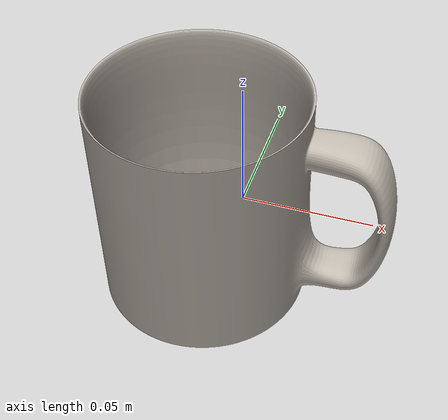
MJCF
<mujoco model="mug_70">
  <asset>
    <mesh file="visual/model_normalized_0.obj" name="model_normalized_0_vis" scale="0.11499999999999999 0.11499999999999999 0.11499999999999999" refquat="0.7071067811865472 0.0 0.0 0.7071067811865476"/>
    <mesh file="collision/model_normalized_collision_22.obj" name="model_normalized_collision_22._coll" scale="0.11499999999999999 0.11499999999999999 0.11499999999999999" refquat="0.7071067811865472 0.0 0.0 0.7071067811865476"/>
    <mesh file="collision/model_normalized_collision_23.obj" name="model_normalized_collision_23._coll" scale="0.11499999999999999 0.11499999999999999 0.11499999999999999" refquat="0.7071067811865472 0.0 0.0 0.7071067811865476"/>
    <mesh file="collision/model_normalized_collision_21.obj" name="model_normalized_collision_21._coll" scale="0.11499999999999999 0.11499999999999999 0.11499999999999999" refquat="0.7071067811865472 0.0 0.0 0.7071067811865476"/>
    <mesh file="collision/model_normalized_collision_20.obj" name="model_normalized_collision_20._coll" scale="0.11499999999999999 0.11499999999999999 0.11499999999999999" refquat="0.7071067811865472 0.0 0.0 0.7071067811865476"/>
    <mesh file="collision/model_normalized_collision_24.obj" name="model_normalized_collision_24._coll" scale="0.11499999999999999 0.11499999999999999 0.11499999999999999" refquat="0.7071067811865472 0.0 0.0 0.7071067811865476"/>
    <mesh file="collision/model_normalized_collision_30.obj" name="model_normalized_collision_30._coll" scale="0.11499999999999999 0.11499999999999999 0.11499999999999999" refquat="0.7071067811865472 0.0 0.0 0.7071067811865476"/>
    <mesh file="collision/model_normalized_collision_18.obj" name="model_normalized_collision_18._coll" scale="0.11499999999999999 0.11499999999999999 0.11499999999999999" refquat="0.7071067811865472 0.0 0.0 0.7071067811865476"/>
    <mesh file="collision/model_normalized_collision_19.obj" name="model_normalized_collision_19._coll" scale="0.11499999999999999 0.11499999999999999 0.11499999999999999" refquat="0.7071067811865472 0.0 0.0 0.7071067811865476"/>
    <mesh file="collision/model_normalized_collision_31.obj" name="model_normalized_collision_31._coll" scale="0.11499999999999999 0.11499999999999999 0.11499999999999999" refquat="0.7071067811865472 0.0 0.0 0.7071067811865476"/>
    <mesh file="collision/model_normalized_collision_25.obj" name="model_normalized_collision_25._coll" scale="0.11499999999999999 0.11499999999999999 0.11499999999999999" refquat="0.7071067811865472 0.0 0.0 0.7071067811865476"/>
    <mesh file="collision/model_normalized_collision_27.obj" name="model_normalized_collision_27._coll" scale="0.11499999999999999 0.11499999999999999 0.11499999999999999" refquat="0.7071067811865472 0.0 0.0 0.7071067811865476"/>
    <mesh file="collision/model_normalized_collision_26.obj" name="model_normalized_collision_26._coll" scale="0.11499999999999999 0.11499999999999999 0.11499999999999999" refquat="0.7071067811865472 0.0 0.0 0.7071067811865476"/>
    <mesh file="collision/model_normalized_collision_9.obj" name="model_normalized_collision_9._coll" scale="0.11499999999999999 0.11499999999999999 0.11499999999999999" refquat="0.7071067811865472 0.0 0.0 0.7071067811865476"/>
    <mesh file="collision/model_normalized_collision_8.obj" name="model_normalized_collision_8._coll" scale="0.11499999999999999 0.11499999999999999 0.11499999999999999" refquat="0.7071067811865472 0.0 0.0 0.7071067811865476"/>
    <mesh file="collision/model_normalized_collision_6.obj" name="model_normalized_collision_6._coll" scale="0.11499999999999999 0.11499999999999999 0.11499999999999999" refquat="0.7071067811865472 0.0 0.0 0.7071067811865476"/>
    <mesh file="collision/model_normalized_collision_7.obj" name="model_normalized_collision_7._coll" scale="0.11499999999999999 0.11499999999999999 0.11499999999999999" refquat="0.7071067811865472 0.0 0.0 0.7071067811865476"/>
    <mesh file="collision/model_normalized_collision_5.obj" name="model_normalized_collision_5._coll" scale="0.11499999999999999 0.11499999999999999 0.11499999999999999" refquat="0.7071067811865472 0.0 0.0 0.7071067811865476"/>
    <mesh file="collision/model_normalized_collision_4.obj" name="model_normalized_collision_4._coll" scale="0.11499999999999999 0.11499999999999999 0.11499999999999999" refquat="0.7071067811865472 0.0 0.0 0.7071067811865476"/>
    <mesh file="collision/model_normalized_collision_0.obj" name="model_normalized_collision_0._coll" scale="0.11499999999999999 0.11499999999999999 0.11499999999999999" refquat="0.7071067811865472 0.0 0.0 0.7071067811865476"/>
    <mesh file="collision/model_normalized_collision_1.obj" name="model_normalized_collision_1._coll" scale="0.11499999999999999 0.11499999999999999 0.11499999999999999" refquat="0.7071067811865472 0.0 0.0 0.7071067811865476"/>
    <mesh file="collision/model_normalized_collision_3.obj" name="model_normalized_collision_3._coll" scale="0.11499999999999999 0.11499999999999999 0.11499999999999999" refquat="0.7071067811865472 0.0 0.0 0.7071067811865476"/>
    <mesh file="collision/model_normalized_collision_2.obj" name="model_normalized_collision_2._coll" scale="0.11499999999999999 0.11499999999999999 0.11499999999999999" refquat="0.7071067811865472 0.0 0.0 0.7071067811865476"/>
    <mesh file="collision/model_normalized_collision_17.obj" name="model_normalized_collision_17._coll" scale="0.11499999999999999 0.11499999999999999 0.11499999999999999" refquat="0.7071067811865472 0.0 0.0 0.7071067811865476"/>
    <mesh file="collision/model_normalized_collision_16.obj" name="model_normalized_collision_16._coll" scale="0.11499999999999999 0.11499999999999999 0.11499999999999999" refquat="0.7071067811865472 0.0 0.0 0.7071067811865476"/>
    <mesh file="collision/model_normalized_collision_28.obj" name="model_normalized_collision_28._coll" scale="0.11499999999999999 0.11499999999999999 0.11499999999999999" refquat="0.7071067811865472 0.0 0.0 0.7071067811865476"/>
    <mesh file="collision/model_normalized_collision_14.obj" name="model_normalized_collision_14._coll" scale="0.11499999999999999 0.11499999999999999 0.11499999999999999" refquat="0.7071067811865472 0.0 0.0 0.7071067811865476"/>
    <mesh file="collision/model_normalized_collision_15.obj" name="model_normalized_collision_15._coll" scale="0.11499999999999999 0.11499999999999999 0.11499999999999999" refquat="0.7071067811865472 0.0 0.0 0.7071067811865476"/>
    <mesh file="collision/model_normalized_collision_29.obj" name="model_normalized_collision_29._coll" scale="0.11499999999999999 0.11499999999999999 0.11499999999999999" refquat="0.7071067811865472 0.0 0.0 0.7071067811865476"/>
    <mesh file="collision/model_normalized_collision_11.obj" name="model_normalized_collision_11._coll" scale="0.11499999999999999 0.11499999999999999 0.11499999999999999" refquat="0.7071067811865472 0.0 0.0 0.7071067811865476"/>
    <mesh file="collision/model_normalized_collision_10.obj" name="model_normalized_collision_10._coll" scale="0.11499999999999999 0.11499999999999999 0.11499999999999999" refquat="0.7071067811865472 0.0 0.0 0.7071067811865476"/>
    <mesh file="collision/model_normalized_collision_12.obj" name="model_normalized_collision_12._coll" scale="0.11499999999999999 0.11499999999999999 0.11499999999999999" refquat="0.7071067811865472 0.0 0.0 0.7071067811865476"/>
    <mesh file="collision/model_normalized_collision_13.obj" name="model_normalized_collision_13._coll" scale="0.11499999999999999 0.11499999999999999 0.11499999999999999" refquat="0.7071067811865472 0.0 0.0 0.7071067811865476"/>
    <texture type="2d" name="image0" file="visual/image0.png"/>
    <material name="m_mug" texture="image0" specular="0.5" shininess="0.359999993"/>
  </asset>
  <worldbody>
    <body>
      <body name="object">
        <geom solimp="0.998 0.998 0.001" solref="0.001 1" density="100" friction="0.95 0.3 0.1" type="mesh" mesh="model_normalized_0_vis" conaffinity="0" contype="0" group="1" material="m_mug"/>
        <geom solimp="0.998 0.998 0.001" solref="0.001 1" density="100" friction="0.95 0.3 0.1" type="mesh" mesh="model_normalized_collision_22._coll" group="0" rgba="0.8 0.8 0.8 0.0"/>
        <geom solimp="0.998 0.998 0.001" solref="0.001 1" density="100" friction="0.95 0.3 0.1" type="mesh" mesh="model_normalized_collision_23._coll" group="0" rgba="0.8 0.8 0.8 0.0"/>
        <geom solimp="0.998 0.998 0.001" solref="0.001 1" density="100" friction="0.95 0.3 0.1" type="mesh" mesh="model_normalized_collision_21._coll" group="0" rgba="0.8 0.8 0.8 0.0"/>
        <geom solimp="0.998 0.998 0.001" solref="0.001 1" density="100" friction="0.95 0.3 0.1" type="mesh" mesh="model_normalized_collision_20._coll" group="0" rgba="0.8 0.8 0.8 0.0"/>
        <geom solimp="0.998 0.998 0.001" solref="0.001 1" density="100" friction="0.95 0.3 0.1" type="mesh" mesh="model_normalized_collision_24._coll" group="0" rgba="0.8 0.8 0.8 0.0"/>
        <geom solimp="0.998 0.998 0.001" solref="0.001 1" density="100" friction="0.95 0.3 0.1" type="mesh" mesh="model_normalized_collision_30._coll" group="0" rgba="0.8 0.8 0.8 0.0"/>
        <geom solimp="0.998 0.998 0.001" solref="0.001 1" density="100" friction="0.95 0.3 0.1" type="mesh" mesh="model_normalized_collision_18._coll" group="0" rgba="0.8 0.8 0.8 0.0"/>
        <geom solimp="0.998 0.998 0.001" solref="0.001 1" density="100" friction="0.95 0.3 0.1" type="mesh" mesh="model_normalized_collision_19._coll" group="0" rgba="0.8 0.8 0.8 0.0"/>
        <geom solimp="0.998 0.998 0.001" solref="0.001 1" density="100" friction="0.95 0.3 0.1" type="mesh" mesh="model_normalized_collision_31._coll" group="0" rgba="0.8 0.8 0.8 0.0"/>
        <geom solimp="0.998 0.998 0.001" solref="0.001 1" density="100" friction="0.95 0.3 0.1" type="mesh" mesh="model_normalized_collision_25._coll" group="0" rgba="0.8 0.8 0.8 0.0"/>
        <geom solimp="0.998 0.998 0.001" solref="0.001 1" density="100" friction="0.95 0.3 0.1" type="mesh" mesh="model_normalized_collision_27._coll" group="0" rgba="0.8 0.8 0.8 0.0"/>
        <geom solimp="0.998 0.998 0.001" solref="0.001 1" density="100" friction="0.95 0.3 0.1" type="mesh" mesh="model_normalized_collision_26._coll" group="0" rgba="0.8 0.8 0.8 0.0"/>
        <geom solimp="0.998 0.998 0.001" solref="0.001 1" density="100" friction="0.95 0.3 0.1" type="mesh" mesh="model_normalized_collision_9._coll" group="0" rgba="0.8 0.8 0.8 0.0"/>
        <geom solimp="0.998 0.998 0.001" solref="0.001 1" density="100" friction="0.95 0.3 0.1" type="mesh" mesh="model_normalized_collision_8._coll" group="0" rgba="0.8 0.8 0.8 0.0"/>
        <geom solimp="0.998 0.998 0.001" solref="0.001 1" density="100" friction="0.95 0.3 0.1" type="mesh" mesh="model_normalized_collision_6._coll" group="0" rgba="0.8 0.8 0.8 0.0"/>
        <geom solimp="0.998 0.998 0.001" solref="0.001 1" density="100" friction="0.95 0.3 0.1" type="mesh" mesh="model_normalized_collision_7._coll" group="0" rgba="0.8 0.8 0.8 0.0"/>
        <geom solimp="0.998 0.998 0.001" solref="0.001 1" density="100" friction="0.95 0.3 0.1" type="mesh" mesh="model_normalized_collision_5._coll" group="0" rgba="0.8 0.8 0.8 0.0"/>
        <geom solimp="0.998 0.998 0.001" solref="0.001 1" density="100" friction="0.95 0.3 0.1" type="mesh" mesh="model_normalized_collision_4._coll" group="0" rgba="0.8 0.8 0.8 0.0"/>
        <geom solimp="0.998 0.998 0.001" solref="0.001 1" density="100" friction="0.95 0.3 0.1" type="mesh" mesh="model_normalized_collision_0._coll" group="0" rgba="0.8 0.8 0.8 0.0"/>
        <geom solimp="0.998 0.998 0.001" solref="0.001 1" density="100" friction="0.95 0.3 0.1" type="mesh" mesh="model_normalized_collision_1._coll" group="0" rgba="0.8 0.8 0.8 0.0"/>
        <geom solimp="0.998 0.998 0.001" solref="0.001 1" density="100" friction="0.95 0.3 0.1" type="mesh" mesh="model_normalized_collision_3._coll" group="0" rgba="0.8 0.8 0.8 0.0"/>
        <geom solimp="0.998 0.998 0.001" solref="0.001 1" density="100" friction="0.95 0.3 0.1" type="mesh" mesh="model_normalized_collision_2._coll" group="0" rgba="0.8 0.8 0.8 0.0"/>
        <geom solimp="0.998 0.998 0.001" solref="0.001 1" density="100" friction="0.95 0.3 0.1" type="mesh" mesh="model_normalized_collision_17._coll" group="0" rgba="0.8 0.8 0.8 0.0"/>
        <geom solimp="0.998 0.998 0.001" solref="0.001 1" density="100" friction="0.95 0.3 0.1" type="mesh" mesh="model_normalized_collision_16._coll" group="0" rgba="0.8 0.8 0.8 0.0"/>
        <geom solimp="0.998 0.998 0.001" solref="0.001 1" density="100" friction="0.95 0.3 0.1" type="mesh" mesh="model_normalized_collision_28._coll" group="0" rgba="0.8 0.8 0.8 0.0"/>
        <geom solimp="0.998 0.998 0.001" solref="0.001 1" density="100" friction="0.95 0.3 0.1" type="mesh" mesh="model_normalized_collision_14._coll" group="0" rgba="0.8 0.8 0.8 0.0"/>
        <geom solimp="0.998 0.998 0.001" solref="0.001 1" density="100" friction="0.95 0.3 0.1" type="mesh" mesh="model_normalized_collision_15._coll" group="0" rgba="0.8 0.8 0.8 0.0"/>
        <geom solimp="0.998 0.998 0.001" solref="0.001 1" density="100" friction="0.95 0.3 0.1" type="mesh" mesh="model_normalized_collision_29._coll" group="0" rgba="0.8 0.8 0.8 0.0"/>
        <geom solimp="0.998 0.998 0.001" solref="0.001 1" density="100" friction="0.95 0.3 0.1" type="mesh" mesh="model_normalized_collision_11._coll" group="0" rgba="0.8 0.8 0.8 0.0"/>
        <geom solimp="0.998 0.998 0.001" solref="0.001 1" density="100" friction="0.95 0.3 0.1" type="mesh" mesh="model_normalized_collision_10._coll" group="0" rgba="0.8 0.8 0.8 0.0"/>
        <geom solimp="0.998 0.998 0.001" solref="0.001 1" density="100" friction="0.95 0.3 0.1" type="mesh" mesh="model_normalized_collision_12._coll" group="0" rgba="0.8 0.8 0.8 0.0"/>
        <geom solimp="0.998 0.998 0.001" solref="0.001 1" density="100" friction="0.95 0.3 0.1" type="mesh" mesh="model_normalized_collision_13._coll" group="0" rgba="0.8 0.8 0.8 0.0"/>
      </body>
      <site rgba="0 0 0 0" size="0.005" pos="4.243902500000201e-05 7.88710249999995e-05 -0.0428075701" name="bottom_site"/>
      <site rgba="0 0 0 0" size="0.005" pos="4.243902500000201e-05 7.88710249999995e-05 0.042628894599999995" name="top_site"/>
      <site rgba="0 0 0 0" size="0.005" pos="0.04203482185 0.05653210019999999 -8.933774999999949e-05" name="horizontal_radius_site"/>
    </body>
  </worldbody>
</mujoco>
